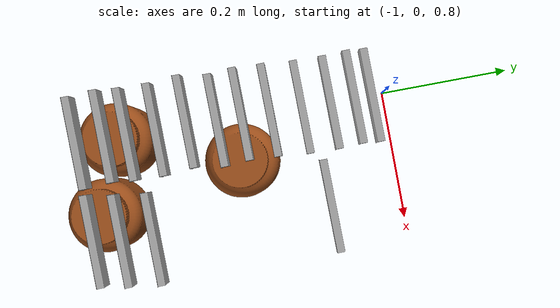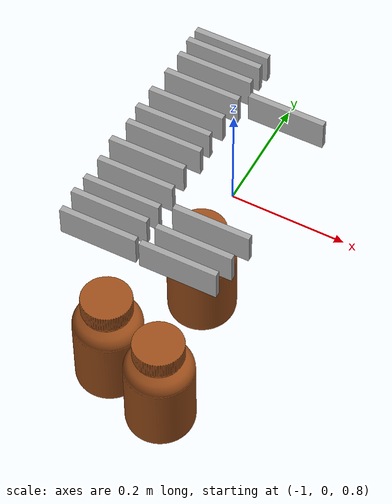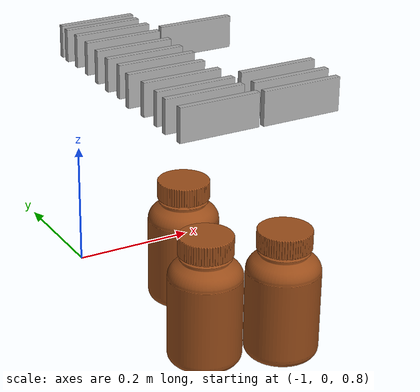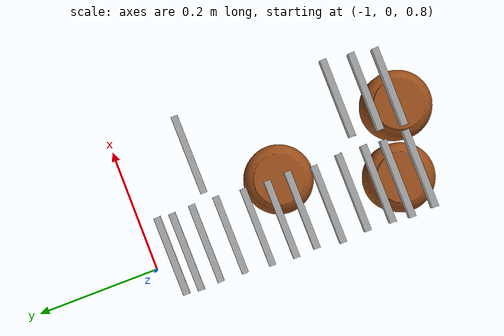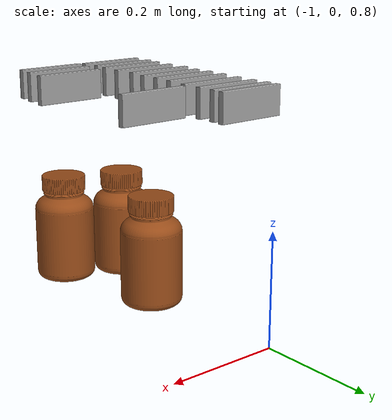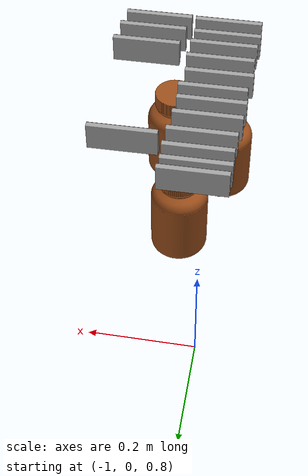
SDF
<sdf version="1.7">
 <world name="default">
  <model name="med_1_0_clone">
   <link name="link_0">
    <inertial>
     <mass>1</mass>
     <inertia>
      <ixx>0.166667</ixx>
      <ixy>0</ixy>
      <ixz>0</ixz>
      <iyy>0.166667</iyy>
      <iyz>0</iyz>
      <izz>0.166667</izz>
     </inertia>
    </inertial>
    <pose>0 -0.005 -0.025 0 -0 0</pose>
    <visual name="visual">
     <pose>0 0.005 0.025 0 -0 0</pose>
     <geometry><mesh><uri>model://med_1/meshes/med-1.dae</uri><scale>0.01 0.01 0.01</scale></mesh></geometry>
     <material>
      <shader type="pixel"><normal_map>__default__</normal_map></shader>
      <emissive>0 0 0 1</emissive>
     </material>
    </visual>
    <collision name="collision">
     <pose>0 0.005 0.025 0 -0 0</pose>
     <geometry><mesh><uri>model://med_1/meshes/med-1.dae</uri><scale>0.01 0.01 0.01</scale></mesh></geometry>
     <surface>
      <friction>
       <ode><mu>1</mu><mu2>1</mu2><fdir1>0 0 0</fdir1><slip1>0</slip1><slip2>0</slip2></ode>
       <torsional>
        <coefficient>1</coefficient>
        <patch_radius>0</patch_radius>
        <surface_radius>0</surface_radius>
        <use_patch_radius>1</use_patch_radius>
        <ode><slip>0</slip></ode>
       </torsional>
      </friction>
      <bounce><restitution_coefficient>0</restitution_coefficient><threshold>1e+06</threshold></bounce>
      <contact>
       <collide_without_contact>0</collide_without_contact>
       <collide_without_contact_bitmask>1</collide_without_contact_bitmask>
       <collide_bitmask>1</collide_bitmask>
       <ode>
        <soft_cfm>0</soft_cfm>
        <soft_erp>0.2</soft_erp>
        <kp>1e+13</kp>
        <kd>1</kd>
        <max_vel>0.01</max_vel>
        <min_depth>0</min_depth>
       </ode>
       <bullet>
        <split_impulse>1</split_impulse>
        <split_impulse_penetration_threshold>-0.01</split_impulse_penetration_threshold>
        <soft_cfm>0</soft_cfm>
        <soft_erp>0.2</soft_erp>
        <kp>1e+13</kp>
        <kd>1</kd>
       </bullet>
      </contact>
     </surface>
    </collision>
   </link>
   <static>0</static>
   <pose>-0.984055 -0.067989 1.20018 -1.8e-05 -0 -3.13179</pose>
  </model>
  <model name="med_1_0_clone_0">
   <link name="link_0">
    <inertial>
     <mass>1</mass>
     <inertia>
      <ixx>0.166667</ixx>
      <ixy>0</ixy>
      <ixz>0</ixz>
      <iyy>0.166667</iyy>
      <iyz>0</iyz>
      <izz>0.166667</izz>
     </inertia>
    </inertial>
    <pose>0 -0.005 -0.025 0 -0 0</pose>
    <visual name="visual">
     <pose>0 0.005 0.025 0 -0 0</pose>
     <geometry><mesh><uri>model://med_1/meshes/med-1.dae</uri><scale>0.01 0.01 0.01</scale></mesh></geometry>
     <material>
      <shader type="pixel"><normal_map>__default__</normal_map></shader>
      <emissive>0 0 0 1</emissive>
     </material>
    </visual>
    <collision name="collision">
     <pose>0 0.005 0.025 0 -0 0</pose>
     <geometry><mesh><uri>model://med_1/meshes/med-1.dae</uri><scale>0.01 0.01 0.01</scale></mesh></geometry>
     <surface>
      <friction>
       <ode><mu>1</mu><mu2>1</mu2><fdir1>0 0 0</fdir1><slip1>0</slip1><slip2>0</slip2></ode>
       <torsional>
        <coefficient>1</coefficient>
        <patch_radius>0</patch_radius>
        <surface_radius>0</surface_radius>
        <use_patch_radius>1</use_patch_radius>
        <ode><slip>0</slip></ode>
       </torsional>
      </friction>
      <bounce><restitution_coefficient>0</restitution_coefficient><threshold>1e+06</threshold></bounce>
      <contact>
       <collide_without_contact>0</collide_without_contact>
       <collide_without_contact_bitmask>1</collide_without_contact_bitmask>
       <collide_bitmask>1</collide_bitmask>
       <ode>
        <soft_cfm>0</soft_cfm>
        <soft_erp>0.2</soft_erp>
        <kp>1e+13</kp>
        <kd>1</kd>
        <max_vel>0.01</max_vel>
        <min_depth>0</min_depth>
       </ode>
       <bullet>
        <split_impulse>1</split_impulse>
        <split_impulse_penetration_threshold>-0.01</split_impulse_penetration_threshold>
        <soft_cfm>0</soft_cfm>
        <soft_erp>0.2</soft_erp>
        <kp>1e+13</kp>
        <kd>1</kd>
       </bullet>
      </contact>
     </surface>
    </collision>
   </link>
   <static>0</static>
   <pose>-0.982142 -0.045704 1.20018 -4e-06 0 -3.13179</pose>
  </model>
  <model name="med_1_0_clone_14">
   <link name="link_0">
    <inertial>
     <mass>1</mass>
     <inertia>
      <ixx>0.166667</ixx>
      <ixy>0</ixy>
      <ixz>0</ixz>
      <iyy>0.166667</iyy>
      <iyz>0</iyz>
      <izz>0.166667</izz>
     </inertia>
    </inertial>
    <pose>0 -0.005 -0.025 0 -0 0</pose>
    <visual name="visual">
     <pose>0 0.005 0.025 0 -0 0</pose>
     <geometry><mesh><uri>model://med_1/meshes/med-1.dae</uri><scale>0.01 0.01 0.01</scale></mesh></geometry>
     <material>
      <shader type="pixel"><normal_map>__default__</normal_map></shader>
      <emissive>0 0 0 1</emissive>
     </material>
    </visual>
    <collision name="collision">
     <pose>0 0.005 0.025 0 -0 0</pose>
     <geometry><mesh><uri>model://med_1/meshes/med-1.dae</uri><scale>0.01 0.01 0.01</scale></mesh></geometry>
     <surface>
      <friction>
       <ode><mu>1</mu><mu2>1</mu2><fdir1>0 0 0</fdir1><slip1>0</slip1><slip2>0</slip2></ode>
       <torsional>
        <coefficient>1</coefficient>
        <patch_radius>0</patch_radius>
        <surface_radius>0</surface_radius>
        <use_patch_radius>1</use_patch_radius>
        <ode><slip>0</slip></ode>
       </torsional>
      </friction>
      <bounce><restitution_coefficient>0</restitution_coefficient><threshold>1e+06</threshold></bounce>
      <contact>
       <collide_without_contact>0</collide_without_contact>
       <collide_without_contact_bitmask>1</collide_without_contact_bitmask>
       <collide_bitmask>1</collide_bitmask>
       <ode>
        <soft_cfm>0</soft_cfm>
        <soft_erp>0.2</soft_erp>
        <kp>1e+13</kp>
        <kd>1</kd>
        <max_vel>0.01</max_vel>
        <min_depth>0</min_depth>
       </ode>
       <bullet>
        <split_impulse>1</split_impulse>
        <split_impulse_penetration_threshold>-0.01</split_impulse_penetration_threshold>
        <soft_cfm>0</soft_cfm>
        <soft_erp>0.2</soft_erp>
        <kp>1e+13</kp>
        <kd>1</kd>
       </bullet>
      </contact>
     </surface>
    </collision>
   </link>
   <static>0</static>
   <pose>-0.853003 -0.121426 1.20018 -3.2e-05 -0 -3.13179</pose>
  </model>
  <model name="med_1_0_clone_15">
   <link name="link_0">
    <inertial>
     <mass>1</mass>
     <inertia>
      <ixx>0.166667</ixx>
      <ixy>0</ixy>
      <ixz>0</ixz>
      <iyy>0.166667</iyy>
      <iyz>0</iyz>
      <izz>0.166667</izz>
     </inertia>
    </inertial>
    <pose>0 -0.005 -0.025 0 -0 0</pose>
    <visual name="visual">
     <pose>0 0.005 0.025 0 -0 0</pose>
     <geometry><mesh><uri>model://med_1/meshes/med-1.dae</uri><scale>0.01 0.01 0.01</scale></mesh></geometry>
     <material>
      <shader type="pixel"><normal_map>__default__</normal_map></shader>
      <emissive>0 0 0 1</emissive>
     </material>
    </visual>
    <collision name="collision">
     <pose>0 0.005 0.025 0 -0 0</pose>
     <geometry><mesh><uri>model://med_1/meshes/med-1.dae</uri><scale>0.01 0.01 0.01</scale></mesh></geometry>
     <surface>
      <friction>
       <ode><mu>1</mu><mu2>1</mu2><fdir1>0 0 0</fdir1><slip1>0</slip1><slip2>0</slip2></ode>
       <torsional>
        <coefficient>1</coefficient>
        <patch_radius>0</patch_radius>
        <surface_radius>0</surface_radius>
        <use_patch_radius>1</use_patch_radius>
        <ode><slip>0</slip></ode>
       </torsional>
      </friction>
      <bounce><restitution_coefficient>0</restitution_coefficient><threshold>1e+06</threshold></bounce>
      <contact>
       <collide_without_contact>0</collide_without_contact>
       <collide_without_contact_bitmask>1</collide_without_contact_bitmask>
       <collide_bitmask>1</collide_bitmask>
       <ode>
        <soft_cfm>0</soft_cfm>
        <soft_erp>0.2</soft_erp>
        <kp>1e+13</kp>
        <kd>1</kd>
        <max_vel>0.01</max_vel>
        <min_depth>0</min_depth>
       </ode>
       <bullet>
        <split_impulse>1</split_impulse>
        <split_impulse_penetration_threshold>-0.01</split_impulse_penetration_threshold>
        <soft_cfm>0</soft_cfm>
        <soft_erp>0.2</soft_erp>
        <kp>1e+13</kp>
        <kd>1</kd>
       </bullet>
      </contact>
     </surface>
    </collision>
   </link>
   <static>0</static>
   <pose>-0.982692 -0.09912 1.20019 -3e-06 -3e-06 -3.13179</pose>
  </model>
  <model name="med_1_0_clone_16">
   <link name="link_0">
    <inertial>
     <mass>1</mass>
     <inertia>
      <ixx>0.166667</ixx>
      <ixy>0</ixy>
      <ixz>0</ixz>
      <iyy>0.166667</iyy>
      <iyz>0</iyz>
      <izz>0.166667</izz>
     </inertia>
    </inertial>
    <pose>0 -0.005 -0.025 0 -0 0</pose>
    <visual name="visual">
     <pose>0 0.005 0.025 0 -0 0</pose>
     <geometry><mesh><uri>model://med_1/meshes/med-1.dae</uri><scale>0.01 0.01 0.01</scale></mesh></geometry>
     <material>
      <shader type="pixel"><normal_map>__default__</normal_map></shader>
      <emissive>0 0 0 1</emissive>
     </material>
    </visual>
    <collision name="collision">
     <pose>0 0.005 0.025 0 -0 0</pose>
     <geometry><mesh><uri>model://med_1/meshes/med-1.dae</uri><scale>0.01 0.01 0.01</scale></mesh></geometry>
     <surface>
      <friction>
       <ode><mu>1</mu><mu2>1</mu2><fdir1>0 0 0</fdir1><slip1>0</slip1><slip2>0</slip2></ode>
       <torsional>
        <coefficient>1</coefficient>
        <patch_radius>0</patch_radius>
        <surface_radius>0</surface_radius>
        <use_patch_radius>1</use_patch_radius>
        <ode><slip>0</slip></ode>
       </torsional>
      </friction>
      <bounce><restitution_coefficient>0</restitution_coefficient><threshold>1e+06</threshold></bounce>
      <contact>
       <collide_without_contact>0</collide_without_contact>
       <collide_without_contact_bitmask>1</collide_without_contact_bitmask>
       <collide_bitmask>1</collide_bitmask>
       <ode>
        <soft_cfm>0</soft_cfm>
        <soft_erp>0.2</soft_erp>
        <kp>1e+13</kp>
        <kd>1</kd>
        <max_vel>0.01</max_vel>
        <min_depth>0</min_depth>
       </ode>
       <bullet>
        <split_impulse>1</split_impulse>
        <split_impulse_penetration_threshold>-0.01</split_impulse_penetration_threshold>
        <soft_cfm>0</soft_cfm>
        <soft_erp>0.2</soft_erp>
        <kp>1e+13</kp>
        <kd>1</kd>
       </bullet>
      </contact>
     </surface>
    </collision>
   </link>
   <static>0</static>
   <pose>-0.986787 -0.24714 1.20018 -1.9e-05 1e-06 -3.13179</pose>
  </model>
  <model name="med_1_0_clone_19">
   <link name="link_0">
    <inertial>
     <mass>1</mass>
     <inertia>
      <ixx>0.166667</ixx>
      <ixy>0</ixy>
      <ixz>0</ixz>
      <iyy>0.166667</iyy>
      <iyz>0</iyz>
      <izz>0.166667</izz>
     </inertia>
    </inertial>
    <pose>0 -0.005 -0.025 0 -0 0</pose>
    <visual name="visual">
     <pose>0 0.005 0.025 0 -0 0</pose>
     <geometry><mesh><uri>model://med_1/meshes/med-1.dae</uri><scale>0.01 0.01 0.01</scale></mesh></geometry>
     <material>
      <shader type="pixel"><normal_map>__default__</normal_map></shader>
      <emissive>0 0 0 1</emissive>
     </material>
    </visual>
    <collision name="collision">
     <pose>0 0.005 0.025 0 -0 0</pose>
     <geometry><mesh><uri>model://med_1/meshes/med-1.dae</uri><scale>0.01 0.01 0.01</scale></mesh></geometry>
     <surface>
      <friction>
       <ode><mu>1</mu><mu2>1</mu2><fdir1>0 0 0</fdir1><slip1>0</slip1><slip2>0</slip2></ode>
       <torsional>
        <coefficient>1</coefficient>
        <patch_radius>0</patch_radius>
        <surface_radius>0</surface_radius>
        <use_patch_radius>1</use_patch_radius>
        <ode><slip>0</slip></ode>
       </torsional>
      </friction>
      <bounce><restitution_coefficient>0</restitution_coefficient><threshold>1e+06</threshold></bounce>
      <contact>
       <collide_without_contact>0</collide_without_contact>
       <collide_without_contact_bitmask>1</collide_without_contact_bitmask>
       <collide_bitmask>1</collide_bitmask>
       <ode>
        <soft_cfm>0</soft_cfm>
        <soft_erp>0.2</soft_erp>
        <kp>1e+13</kp>
        <kd>1</kd>
        <max_vel>0.01</max_vel>
        <min_depth>0</min_depth>
       </ode>
       <bullet>
        <split_impulse>1</split_impulse>
        <split_impulse_penetration_threshold>-0.01</split_impulse_penetration_threshold>
        <soft_cfm>0</soft_cfm>
        <soft_erp>0.2</soft_erp>
        <kp>1e+13</kp>
        <kd>1</kd>
       </bullet>
      </contact>
     </surface>
    </collision>
   </link>
   <static>0</static>
   <pose>-0.987166 -0.177812 1.20019 -6e-06 0 -3.13179</pose>
  </model>
  <model name="med_1_0_clone_20">
   <link name="link_0">
    <inertial>
     <mass>1</mass>
     <inertia>
      <ixx>0.166667</ixx>
      <ixy>0</ixy>
      <ixz>0</ixz>
      <iyy>0.166667</iyy>
      <iyz>0</iyz>
      <izz>0.166667</izz>
     </inertia>
    </inertial>
    <pose>0 -0.005 -0.025 0 -0 0</pose>
    <visual name="visual">
     <pose>0 0.005 0.025 0 -0 0</pose>
     <geometry><mesh><uri>model://med_1/meshes/med-1.dae</uri><scale>0.01 0.01 0.01</scale></mesh></geometry>
     <material>
      <shader type="pixel"><normal_map>__default__</normal_map></shader>
      <emissive>0 0 0 1</emissive>
     </material>
    </visual>
    <collision name="collision">
     <pose>0 0.005 0.025 0 -0 0</pose>
     <geometry><mesh><uri>model://med_1/meshes/med-1.dae</uri><scale>0.01 0.01 0.01</scale></mesh></geometry>
     <surface>
      <friction>
       <ode><mu>1</mu><mu2>1</mu2><fdir1>0 0 0</fdir1><slip1>0</slip1><slip2>0</slip2></ode>
       <torsional>
        <coefficient>1</coefficient>
        <patch_radius>0</patch_radius>
        <surface_radius>0</surface_radius>
        <use_patch_radius>1</use_patch_radius>
        <ode><slip>0</slip></ode>
       </torsional>
      </friction>
      <bounce><restitution_coefficient>0</restitution_coefficient><threshold>1e+06</threshold></bounce>
      <contact>
       <collide_without_contact>0</collide_without_contact>
       <collide_without_contact_bitmask>1</collide_without_contact_bitmask>
       <collide_bitmask>1</collide_bitmask>
       <ode>
        <soft_cfm>0</soft_cfm>
        <soft_erp>0.2</soft_erp>
        <kp>1e+13</kp>
        <kd>1</kd>
        <max_vel>0.01</max_vel>
        <min_depth>0</min_depth>
       </ode>
       <bullet>
        <split_impulse>1</split_impulse>
        <split_impulse_penetration_threshold>-0.01</split_impulse_penetration_threshold>
        <soft_cfm>0</soft_cfm>
        <soft_erp>0.2</soft_erp>
        <kp>1e+13</kp>
        <kd>1</kd>
       </bullet>
      </contact>
     </surface>
    </collision>
   </link>
   <static>0</static>
   <pose>-0.989035 -0.214728 1.20019 -5e-06 5e-06 -3.13166</pose>
  </model>
  <model name="med_1_0_clone_23">
   <link name="link_0">
    <inertial>
     <mass>1</mass>
     <inertia>
      <ixx>0.166667</ixx>
      <ixy>0</ixy>
      <ixz>0</ixz>
      <iyy>0.166667</iyy>
      <iyz>0</iyz>
      <izz>0.166667</izz>
     </inertia>
    </inertial>
    <pose>0 -0.005 -0.025 0 -0 0</pose>
    <visual name="visual">
     <pose>0 0.005 0.025 0 -0 0</pose>
     <geometry><mesh><uri>model://med_1/meshes/med-1.dae</uri><scale>0.01 0.01 0.01</scale></mesh></geometry>
     <material>
      <shader type="pixel"><normal_map>__default__</normal_map></shader>
      <emissive>0 0 0 1</emissive>
     </material>
    </visual>
    <collision name="collision">
     <pose>0 0.005 0.025 0 -0 0</pose>
     <geometry><mesh><uri>model://med_1/meshes/med-1.dae</uri><scale>0.01 0.01 0.01</scale></mesh></geometry>
     <surface>
      <friction>
       <ode><mu>1</mu><mu2>1</mu2><fdir1>0 0 0</fdir1><slip1>0</slip1><slip2>0</slip2></ode>
       <torsional>
        <coefficient>1</coefficient>
        <patch_radius>0</patch_radius>
        <surface_radius>0</surface_radius>
        <use_patch_radius>1</use_patch_radius>
        <ode><slip>0</slip></ode>
       </torsional>
      </friction>
      <bounce><restitution_coefficient>0</restitution_coefficient><threshold>1e+06</threshold></bounce>
      <contact>
       <collide_without_contact>0</collide_without_contact>
       <collide_without_contact_bitmask>1</collide_without_contact_bitmask>
       <collide_bitmask>1</collide_bitmask>
       <ode>
        <soft_cfm>0</soft_cfm>
        <soft_erp>0.2</soft_erp>
        <kp>1e+13</kp>
        <kd>1</kd>
        <max_vel>0.01</max_vel>
        <min_depth>0</min_depth>
       </ode>
       <bullet>
        <split_impulse>1</split_impulse>
        <split_impulse_penetration_threshold>-0.01</split_impulse_penetration_threshold>
        <soft_cfm>0</soft_cfm>
        <soft_erp>0.2</soft_erp>
        <kp>1e+13</kp>
        <kd>1</kd>
       </bullet>
      </contact>
     </surface>
    </collision>
   </link>
   <static>0</static>
   <pose>-0.983624 -0.136513 1.20019 -2.2e-05 -0 -3.13179</pose>
  </model>
  <model name="med_1_0_clone_29">
   <link name="link_0">
    <inertial>
     <mass>1</mass>
     <inertia>
      <ixx>0.166667</ixx>
      <ixy>0</ixy>
      <ixz>0</ixz>
      <iyy>0.166667</iyy>
      <iyz>0</iyz>
      <izz>0.166667</izz>
     </inertia>
    </inertial>
    <pose>0 -0.005 -0.025 0 -0 0</pose>
    <visual name="visual">
     <pose>0 0.005 0.025 0 -0 0</pose>
     <geometry><mesh><uri>model://med_1/meshes/med-1.dae</uri><scale>0.01 0.01 0.01</scale></mesh></geometry>
     <material>
      <shader type="pixel"><normal_map>__default__</normal_map></shader>
      <emissive>0 0 0 1</emissive>
     </material>
    </visual>
    <collision name="collision">
     <pose>0 0.005 0.025 0 -0 0</pose>
     <geometry><mesh><uri>model://med_1/meshes/med-1.dae</uri><scale>0.01 0.01 0.01</scale></mesh></geometry>
     <surface>
      <friction>
       <ode><mu>1</mu><mu2>1</mu2><fdir1>0 0 0</fdir1><slip1>0</slip1><slip2>0</slip2></ode>
       <torsional>
        <coefficient>1</coefficient>
        <patch_radius>0</patch_radius>
        <surface_radius>0</surface_radius>
        <use_patch_radius>1</use_patch_radius>
        <ode><slip>0</slip></ode>
       </torsional>
      </friction>
      <bounce><restitution_coefficient>0</restitution_coefficient><threshold>1e+06</threshold></bounce>
      <contact>
       <collide_without_contact>0</collide_without_contact>
       <collide_without_contact_bitmask>1</collide_without_contact_bitmask>
       <collide_bitmask>1</collide_bitmask>
       <ode>
        <soft_cfm>0</soft_cfm>
        <soft_erp>0.2</soft_erp>
        <kp>1e+13</kp>
        <kd>1</kd>
        <max_vel>0.01</max_vel>
        <min_depth>0</min_depth>
       </ode>
       <bullet>
        <split_impulse>1</split_impulse>
        <split_impulse_penetration_threshold>-0.01</split_impulse_penetration_threshold>
        <soft_cfm>0</soft_cfm>
        <soft_erp>0.2</soft_erp>
        <kp>1e+13</kp>
        <kd>1</kd>
       </bullet>
      </contact>
     </surface>
    </collision>
   </link>
   <static>0</static>
   <pose>-0.863893 -0.429891 1.20018 1e-05 -2e-06 -3.13179</pose>
  </model>
  <model name="med_1_0_clone_31">
   <link name="link_0">
    <inertial>
     <mass>1</mass>
     <inertia>
      <ixx>0.166667</ixx>
      <ixy>0</ixy>
      <ixz>0</ixz>
      <iyy>0.166667</iyy>
      <iyz>0</iyz>
      <izz>0.166667</izz>
     </inertia>
    </inertial>
    <pose>0 -0.005 -0.025 0 -0 0</pose>
    <visual name="visual">
     <pose>0 0.005 0.025 0 -0 0</pose>
     <geometry><mesh><uri>model://med_1/meshes/med-1.dae</uri><scale>0.01 0.01 0.01</scale></mesh></geometry>
     <material>
      <shader type="pixel"><normal_map>__default__</normal_map></shader>
      <emissive>0 0 0 1</emissive>
     </material>
    </visual>
    <collision name="collision">
     <pose>0 0.005 0.025 0 -0 0</pose>
     <geometry><mesh><uri>model://med_1/meshes/med-1.dae</uri><scale>0.01 0.01 0.01</scale></mesh></geometry>
     <surface>
      <friction>
       <ode><mu>1</mu><mu2>1</mu2><fdir1>0 0 0</fdir1><slip1>0</slip1><slip2>0</slip2></ode>
       <torsional>
        <coefficient>1</coefficient>
        <patch_radius>0</patch_radius>
        <surface_radius>0</surface_radius>
        <use_patch_radius>1</use_patch_radius>
        <ode><slip>0</slip></ode>
       </torsional>
      </friction>
      <bounce><restitution_coefficient>0</restitution_coefficient><threshold>1e+06</threshold></bounce>
      <contact>
       <collide_without_contact>0</collide_without_contact>
       <collide_without_contact_bitmask>1</collide_without_contact_bitmask>
       <collide_bitmask>1</collide_bitmask>
       <ode>
        <soft_cfm>0</soft_cfm>
        <soft_erp>0.2</soft_erp>
        <kp>1e+13</kp>
        <kd>1</kd>
        <max_vel>0.01</max_vel>
        <min_depth>0</min_depth>
       </ode>
       <bullet>
        <split_impulse>1</split_impulse>
        <split_impulse_penetration_threshold>-0.01</split_impulse_penetration_threshold>
        <soft_cfm>0</soft_cfm>
        <soft_erp>0.2</soft_erp>
        <kp>1e+13</kp>
        <kd>1</kd>
       </bullet>
      </contact>
     </surface>
    </collision>
   </link>
   <static>0</static>
   <pose>-0.989511 -0.325608 1.20018 -3.5e-05 -0 -3.13178</pose>
  </model>
  <model name="med_1_0_clone_33">
   <link name="link_0">
    <inertial>
     <mass>1</mass>
     <inertia>
      <ixx>0.166667</ixx>
      <ixy>0</ixy>
      <ixz>0</ixz>
      <iyy>0.166667</iyy>
      <iyz>0</iyz>
      <izz>0.166667</izz>
     </inertia>
    </inertial>
    <pose>0 -0.005 -0.025 0 -0 0</pose>
    <visual name="visual">
     <pose>0 0.005 0.025 0 -0 0</pose>
     <geometry><mesh><uri>model://med_1/meshes/med-1.dae</uri><scale>0.01 0.01 0.01</scale></mesh></geometry>
     <material>
      <shader type="pixel"><normal_map>__default__</normal_map></shader>
      <emissive>0 0 0 1</emissive>
     </material>
    </visual>
    <collision name="collision">
     <pose>0 0.005 0.025 0 -0 0</pose>
     <geometry><mesh><uri>model://med_1/meshes/med-1.dae</uri><scale>0.01 0.01 0.01</scale></mesh></geometry>
     <surface>
      <friction>
       <ode><mu>1</mu><mu2>1</mu2><fdir1>0 0 0</fdir1><slip1>0</slip1><slip2>0</slip2></ode>
       <torsional>
        <coefficient>1</coefficient>
        <patch_radius>0</patch_radius>
        <surface_radius>0</surface_radius>
        <use_patch_radius>1</use_patch_radius>
        <ode><slip>0</slip></ode>
       </torsional>
      </friction>
      <bounce><restitution_coefficient>0</restitution_coefficient><threshold>1e+06</threshold></bounce>
      <contact>
       <collide_without_contact>0</collide_without_contact>
       <collide_without_contact_bitmask>1</collide_without_contact_bitmask>
       <collide_bitmask>1</collide_bitmask>
       <ode>
        <soft_cfm>0</soft_cfm>
        <soft_erp>0.2</soft_erp>
        <kp>1e+13</kp>
        <kd>1</kd>
        <max_vel>0.01</max_vel>
        <min_depth>0</min_depth>
       </ode>
       <bullet>
        <split_impulse>1</split_impulse>
        <split_impulse_penetration_threshold>-0.01</split_impulse_penetration_threshold>
        <soft_cfm>0</soft_cfm>
        <soft_erp>0.2</soft_erp>
        <kp>1e+13</kp>
        <kd>1</kd>
       </bullet>
      </contact>
     </surface>
    </collision>
   </link>
   <static>0</static>
   <pose>-0.990542 -0.364091 1.20018 -7e-06 -0 -3.13178</pose>
  </model>
  <model name="med_1_0_clone_35">
   <link name="link_0">
    <inertial>
     <mass>1</mass>
     <inertia>
      <ixx>0.166667</ixx>
      <ixy>0</ixy>
      <ixz>0</ixz>
      <iyy>0.166667</iyy>
      <iyz>0</iyz>
      <izz>0.166667</izz>
     </inertia>
    </inertial>
    <pose>0 -0.005 -0.025 0 -0 0</pose>
    <visual name="visual">
     <pose>0 0.005 0.025 0 -0 0</pose>
     <geometry><mesh><uri>model://med_1/meshes/med-1.dae</uri><scale>0.01 0.01 0.01</scale></mesh></geometry>
     <material>
      <shader type="pixel"><normal_map>__default__</normal_map></shader>
      <emissive>0 0 0 1</emissive>
     </material>
    </visual>
    <collision name="collision">
     <pose>0 0.005 0.025 0 -0 0</pose>
     <geometry><mesh><uri>model://med_1/meshes/med-1.dae</uri><scale>0.01 0.01 0.01</scale></mesh></geometry>
     <surface>
      <friction>
       <ode><mu>1</mu><mu2>1</mu2><fdir1>0 0 0</fdir1><slip1>0</slip1><slip2>0</slip2></ode>
       <torsional>
        <coefficient>1</coefficient>
        <patch_radius>0</patch_radius>
        <surface_radius>0</surface_radius>
        <use_patch_radius>1</use_patch_radius>
        <ode><slip>0</slip></ode>
       </torsional>
      </friction>
      <bounce><restitution_coefficient>0</restitution_coefficient><threshold>1e+06</threshold></bounce>
      <contact>
       <collide_without_contact>0</collide_without_contact>
       <collide_without_contact_bitmask>1</collide_without_contact_bitmask>
       <collide_bitmask>1</collide_bitmask>
       <ode>
        <soft_cfm>0</soft_cfm>
        <soft_erp>0.2</soft_erp>
        <kp>1e+13</kp>
        <kd>1</kd>
        <max_vel>0.01</max_vel>
        <min_depth>0</min_depth>
       </ode>
       <bullet>
        <split_impulse>1</split_impulse>
        <split_impulse_penetration_threshold>-0.01</split_impulse_penetration_threshold>
        <soft_cfm>0</soft_cfm>
        <soft_erp>0.2</soft_erp>
        <kp>1e+13</kp>
        <kd>1</kd>
       </bullet>
      </contact>
     </surface>
    </collision>
   </link>
   <static>0</static>
   <pose>-0.858212 -0.394664 1.20018 -6e-06 -1e-06 -3.13178</pose>
  </model>
  <model name="med_1_0_clone_36">
   <link name="link_0">
    <inertial>
     <mass>1</mass>
     <inertia>
      <ixx>0.166667</ixx>
      <ixy>0</ixy>
      <ixz>0</ixz>
      <iyy>0.166667</iyy>
      <iyz>0</iyz>
      <izz>0.166667</izz>
     </inertia>
    </inertial>
    <pose>0 -0.005 -0.025 0 -0 0</pose>
    <visual name="visual">
     <pose>0 0.005 0.025 0 -0 0</pose>
     <geometry><mesh><uri>model://med_1/meshes/med-1.dae</uri><scale>0.01 0.01 0.01</scale></mesh></geometry>
     <material>
      <shader type="pixel"><normal_map>__default__</normal_map></shader>
      <emissive>0 0 0 1</emissive>
     </material>
    </visual>
    <collision name="collision">
     <pose>0 0.005 0.025 0 -0 0</pose>
     <geometry><mesh><uri>model://med_1/meshes/med-1.dae</uri><scale>0.01 0.01 0.01</scale></mesh></geometry>
     <surface>
      <friction>
       <ode><mu>1</mu><mu2>1</mu2><fdir1>0 0 0</fdir1><slip1>0</slip1><slip2>0</slip2></ode>
       <torsional>
        <coefficient>1</coefficient>
        <patch_radius>0</patch_radius>
        <surface_radius>0</surface_radius>
        <use_patch_radius>1</use_patch_radius>
        <ode><slip>0</slip></ode>
       </torsional>
      </friction>
      <bounce><restitution_coefficient>0</restitution_coefficient><threshold>1e+06</threshold></bounce>
      <contact>
       <collide_without_contact>0</collide_without_contact>
       <collide_without_contact_bitmask>1</collide_without_contact_bitmask>
       <collide_bitmask>1</collide_bitmask>
       <ode>
        <soft_cfm>0</soft_cfm>
        <soft_erp>0.2</soft_erp>
        <kp>1e+13</kp>
        <kd>1</kd>
        <max_vel>0.01</max_vel>
        <min_depth>0</min_depth>
       </ode>
       <bullet>
        <split_impulse>1</split_impulse>
        <split_impulse_penetration_threshold>-0.01</split_impulse_penetration_threshold>
        <soft_cfm>0</soft_cfm>
        <soft_erp>0.2</soft_erp>
        <kp>1e+13</kp>
        <kd>1</kd>
       </bullet>
      </contact>
     </surface>
    </collision>
   </link>
   <static>0</static>
   <pose>-0.852914 -0.353013 1.20018 -1.3e-05 -1e-06 -3.13178</pose>
  </model>
  <model name="med_1_0_clone_39">
   <link name="link_0">
    <inertial>
     <mass>1</mass>
     <inertia>
      <ixx>0.166667</ixx>
      <ixy>0</ixy>
      <ixz>0</ixz>
      <iyy>0.166667</iyy>
      <iyz>0</iyz>
      <izz>0.166667</izz>
     </inertia>
    </inertial>
    <pose>0 -0.005 -0.025 0 -0 0</pose>
    <visual name="visual">
     <pose>0 0.005 0.025 0 -0 0</pose>
     <geometry><mesh><uri>model://med_1/meshes/med-1.dae</uri><scale>0.01 0.01 0.01</scale></mesh></geometry>
     <material>
      <shader type="pixel"><normal_map>__default__</normal_map></shader>
      <emissive>0 0 0 1</emissive>
     </material>
    </visual>
    <collision name="collision">
     <pose>0 0.005 0.025 0 -0 0</pose>
     <geometry><mesh><uri>model://med_1/meshes/med-1.dae</uri><scale>0.01 0.01 0.01</scale></mesh></geometry>
     <surface>
      <friction>
       <ode><mu>1</mu><mu2>1</mu2><fdir1>0 0 0</fdir1><slip1>0</slip1><slip2>0</slip2></ode>
       <torsional>
        <coefficient>1</coefficient>
        <patch_radius>0</patch_radius>
        <surface_radius>0</surface_radius>
        <use_patch_radius>1</use_patch_radius>
        <ode><slip>0</slip></ode>
       </torsional>
      </friction>
      <bounce><restitution_coefficient>0</restitution_coefficient><threshold>1e+06</threshold></bounce>
      <contact>
       <collide_without_contact>0</collide_without_contact>
       <collide_without_contact_bitmask>1</collide_without_contact_bitmask>
       <collide_bitmask>1</collide_bitmask>
       <ode>
        <soft_cfm>0</soft_cfm>
        <soft_erp>0.2</soft_erp>
        <kp>1e+13</kp>
        <kd>1</kd>
        <max_vel>0.01</max_vel>
        <min_depth>0</min_depth>
       </ode>
       <bullet>
        <split_impulse>1</split_impulse>
        <split_impulse_penetration_threshold>-0.01</split_impulse_penetration_threshold>
        <soft_cfm>0</soft_cfm>
        <soft_erp>0.2</soft_erp>
        <kp>1e+13</kp>
        <kd>1</kd>
       </bullet>
      </contact>
     </surface>
    </collision>
   </link>
   <static>0</static>
   <pose>-0.993438 -0.393533 1.20018 -1.7e-05 -0 -3.13178</pose>
  </model>
  <model name="med_1_0_clone_40">
   <link name="link_0">
    <inertial>
     <mass>1</mass>
     <inertia>
      <ixx>0.166667</ixx>
      <ixy>0</ixy>
      <ixz>0</ixz>
      <iyy>0.166667</iyy>
      <iyz>0</iyz>
      <izz>0.166667</izz>
     </inertia>
    </inertial>
    <pose>0 -0.005 -0.025 0 -0 0</pose>
    <visual name="visual">
     <pose>0 0.005 0.025 0 -0 0</pose>
     <geometry><mesh><uri>model://med_1/meshes/med-1.dae</uri><scale>0.01 0.01 0.01</scale></mesh></geometry>
     <material>
      <shader type="pixel"><normal_map>__default__</normal_map></shader>
      <emissive>0 0 0 1</emissive>
     </material>
    </visual>
    <collision name="collision">
     <pose>0 0.005 0.025 0 -0 0</pose>
     <geometry><mesh><uri>model://med_1/meshes/med-1.dae</uri><scale>0.01 0.01 0.01</scale></mesh></geometry>
     <surface>
      <friction>
       <ode><mu>1</mu><mu2>1</mu2><fdir1>0 0 0</fdir1><slip1>0</slip1><slip2>0</slip2></ode>
       <torsional>
        <coefficient>1</coefficient>
        <patch_radius>0</patch_radius>
        <surface_radius>0</surface_radius>
        <use_patch_radius>1</use_patch_radius>
        <ode><slip>0</slip></ode>
       </torsional>
      </friction>
      <bounce><restitution_coefficient>0</restitution_coefficient><threshold>1e+06</threshold></bounce>
      <contact>
       <collide_without_contact>0</collide_without_contact>
       <collide_without_contact_bitmask>1</collide_without_contact_bitmask>
       <collide_bitmask>1</collide_bitmask>
       <ode>
        <soft_cfm>0</soft_cfm>
        <soft_erp>0.2</soft_erp>
        <kp>1e+13</kp>
        <kd>1</kd>
        <max_vel>0.01</max_vel>
        <min_depth>0</min_depth>
       </ode>
       <bullet>
        <split_impulse>1</split_impulse>
        <split_impulse_penetration_threshold>-0.01</split_impulse_penetration_threshold>
        <soft_cfm>0</soft_cfm>
        <soft_erp>0.2</soft_erp>
        <kp>1e+13</kp>
        <kd>1</kd>
       </bullet>
      </contact>
     </surface>
    </collision>
   </link>
   <static>0</static>
   <pose>-0.991271 -0.429409 1.20018 -5e-06 2e-06 -3.13178</pose>
  </model>
  <model name="Medicine_Bottle_1_clone_0_clone_0">
   <static>0</static>
   <link name="medicine_bottle_link">
    <inertial>
     <mass>0.05</mass>
     <inertia><ixx>1e-05</ixx><ixy>0</ixy><ixz>0</ixz><iyy>1e-05</iyy><iyz>0</iyz><izz>1e-05</izz></inertia>
    </inertial>
    <visual name="visual">
     <geometry>
      <mesh><uri>model://Medicine_Bottle/meshes/Medicine_Bottle.stl</uri><scale>0.1 0.1 0.1</scale></mesh>
     </geometry>
     <material>
      <ambient>0.3 0.2 0.05 1</ambient>
      <diffuse>0.6 0.3 0.1 1</diffuse>
      <specular>0.2 0.2 0.2 1</specular>
      <emissive>0 0 0 1</emissive>
     </material>
    </visual>
    <collision name="collision">
     <geometry>
      <mesh><uri>model://Medicine_Bottle/meshes/Medicine_Bottle.stl</uri><scale>0.1 0.1 0.1</scale></mesh>
     </geometry>
    </collision>
   </link>
   <pose>-0.891115 -0.442333 0.824988 -0.00016 -0.000412 -0.007108</pose>
  </model>
  <model name="Medicine_Bottle_1_clone_0_clone_1">
   <static>0</static>
   <link name="medicine_bottle_link">
    <inertial>
     <mass>0.05</mass>
     <inertia><ixx>1e-05</ixx><ixy>0</ixy><ixz>0</ixz><iyy>1e-05</iyy><iyz>0</iyz><izz>1e-05</izz></inertia>
    </inertial>
    <visual name="visual">
     <geometry>
      <mesh><uri>model://Medicine_Bottle/meshes/Medicine_Bottle.stl</uri><scale>0.1 0.1 0.1</scale></mesh>
     </geometry>
     <material>
      <ambient>0.3 0.2 0.05 1</ambient>
      <diffuse>0.6 0.3 0.1 1</diffuse>
      <specular>0.2 0.2 0.2 1</specular>
      <emissive>0 0 0 1</emissive>
     </material>
    </visual>
    <collision name="collision">
     <geometry>
      <mesh><uri>model://Medicine_Bottle/meshes/Medicine_Bottle.stl</uri><scale>0.1 0.1 0.1</scale></mesh>
     </geometry>
    </collision>
   </link>
   <pose>-0.933734 -0.2301 0.824988 -0.00016 -0.000412 -0.007109</pose>
  </model>
  <model name="Medicine_Bottle_1_clone_0_clone_0_clone">
   <static>0</static>
   <link name="medicine_bottle_link">
    <inertial>
     <mass>0.05</mass>
     <inertia><ixx>1e-05</ixx><ixy>0</ixy><ixz>0</ixz><iyy>1e-05</iyy><iyz>0</iyz><izz>1e-05</izz></inertia>
    </inertial>
    <visual name="visual">
     <geometry>
      <mesh><uri>model://Medicine_Bottle/meshes/Medicine_Bottle.stl</uri><scale>0.1 0.1 0.1</scale></mesh>
     </geometry>
     <material>
      <ambient>0.3 0.2 0.05 1</ambient>
      <diffuse>0.6 0.3 0.1 1</diffuse>
      <specular>0.2 0.2 0.2 1</specular>
      <emissive>0 0 0 1</emissive>
     </material>
    </visual>
    <collision name="collision">
     <geometry>
      <mesh><uri>model://Medicine_Bottle/meshes/Medicine_Bottle.stl</uri><scale>0.1 0.1 0.1</scale></mesh>
     </geometry>
    </collision>
   </link>
   <pose>-0.99739 -0.407106 0.824988 -0.00016 -0.000412 -0.007108</pose>
  </model>
  <model name="med_1_0_clone_16_clone">
   <link name="link_0">
    <inertial>
     <mass>1</mass>
     <inertia>
      <ixx>0.166667</ixx>
      <ixy>0</ixy>
      <ixz>0</ixz>
      <iyy>0.166667</iyy>
      <iyz>0</iyz>
      <izz>0.166667</izz>
     </inertia>
    </inertial>
    <pose>0 -0.005 -0.025 0 -0 0</pose>
    <visual name="visual">
     <pose>0 0.005 0.025 0 -0 0</pose>
     <geometry><mesh><uri>model://med_1/meshes/med-1.dae</uri><scale>0.01 0.01 0.01</scale></mesh></geometry>
     <material>
      <shader type="pixel"><normal_map>__default__</normal_map></shader>
      <emissive>0 0 0 1</emissive>
     </material>
    </visual>
    <collision name="collision">
     <pose>0 0.005 0.025 0 -0 0</pose>
     <geometry><mesh><uri>model://med_1/meshes/med-1.dae</uri><scale>0.01 0.01 0.01</scale></mesh></geometry>
     <surface>
      <friction>
       <ode><mu>1</mu><mu2>1</mu2><fdir1>0 0 0</fdir1><slip1>0</slip1><slip2>0</slip2></ode>
       <torsional>
        <coefficient>1</coefficient>
        <patch_radius>0</patch_radius>
        <surface_radius>0</surface_radius>
        <use_patch_radius>1</use_patch_radius>
        <ode><slip>0</slip></ode>
       </torsional>
      </friction>
      <bounce><restitution_coefficient>0</restitution_coefficient><threshold>1e+06</threshold></bounce>
      <contact>
       <collide_without_contact>0</collide_without_contact>
       <collide_without_contact_bitmask>1</collide_without_contact_bitmask>
       <collide_bitmask>1</collide_bitmask>
       <ode>
        <soft_cfm>0</soft_cfm>
        <soft_erp>0.2</soft_erp>
        <kp>1e+13</kp>
        <kd>1</kd>
        <max_vel>0.01</max_vel>
        <min_depth>0</min_depth>
       </ode>
       <bullet>
        <split_impulse>1</split_impulse>
        <split_impulse_penetration_threshold>-0.01</split_impulse_penetration_threshold>
        <soft_cfm>0</soft_cfm>
        <soft_erp>0.2</soft_erp>
        <kp>1e+13</kp>
        <kd>1</kd>
       </bullet>
      </contact>
     </surface>
    </collision>
   </link>
   <static>0</static>
   <pose>-0.992625 -0.286042 1.20019 -1e-06 -0 -3.13179</pose>
  </model>
 </world>
</sdf>
